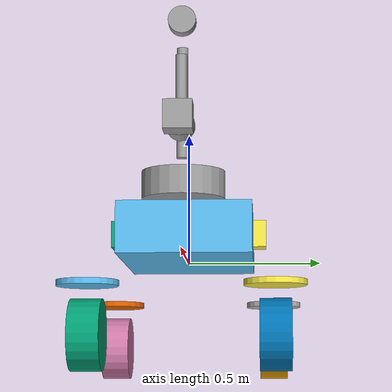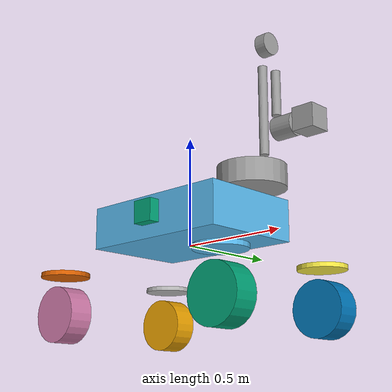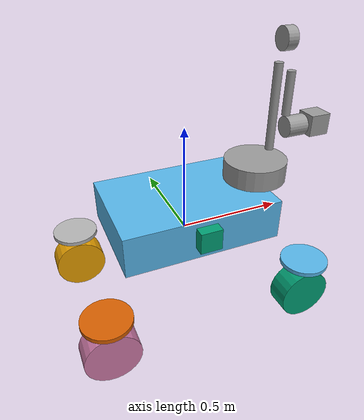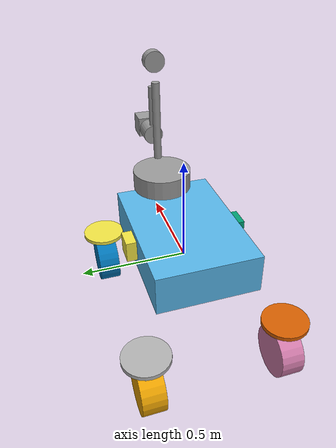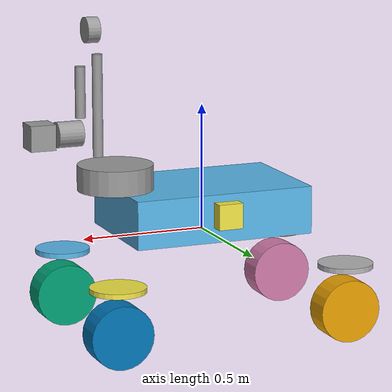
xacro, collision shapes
<?xml version="1.0"?>
<robot xmlns:xacro="http://www.ros.org/wiki/xacro" name="rover">
  <xacro:arg name="can_iface" default="can0"/>
  <xacro:arg name="ros2_control_mode" default="gazebo"/>
  <xacro:arg name="ros2_control_config" default="$(find mr2_rover_description)/config/controllers/rover_controllers.yaml"/>
  <xacro:property name="ros2_control_mode_value" value="$(arg ros2_control_mode)"/>
  <xacro:property name="ros2_control_config_value" value="$(arg ros2_control_config)"/>
  <xacro:property name="can_iface_value" value="$(arg can_iface)"/>
  <xacro:property name="rover_mesh_prefix" value="file://$(find mr2_rover_description)/meshes/rover"/>
  <xacro:property name="rover_mesh_scale" value="0.01"/>
  <material name="Rubber">
    <color rgba="0.05 0.05 0.05 1.0"/>
  </material>

  <!-- Include component macros -->
  <xacro:include filename="$(find mr2_rover_description)/urdf/rover_base.xacro"/>
  <xacro:include filename="$(find mr2_rover_description)/urdf/swerve_module.xacro"/>
  <xacro:include filename="$(find mr2_rover_description)/urdf/manipulator.xacro"/>
  <xacro:include filename="$(find mr2_rover_description)/ros2_control/rover_can.ros2_control.xacro"/>
  <xacro:include filename="$(find mr2_rover_description)/ros2_control/rover_gazebo.ros2_control.xacro"/>
  <xacro:include filename="$(find mr2_rover_description)/urdf/rover_gazebo_sensors.xacro"/>
  <!-- Chassis -->
  <xacro:rover_base/>
  <!-- Four modules -->
  <xacro:swerve_module prefix="fr" parent="right_rocker" xyz=" 0.476931 -0.0797 -0.18" direction="1"/>
  <xacro:swerve_module prefix="fl" parent="left_rocker" xyz=" 0.476931 0.0797 -0.18" direction="-1"/>
  <xacro:swerve_module prefix="rr" parent="right_rocker" xyz="-0.476931 -0.0797 -0.18" direction="1"/>
  <xacro:swerve_module prefix="rl" parent="left_rocker" xyz="-0.476931 0.0797 -0.18" direction="-1"/>
  <!-- Manipulator -->
  <xacro:manipulator/>

  <xacro:if value="${ros2_control_mode_value == 'gazebo'}">
    <xacro:rover_gazebo_sensors ros2_control_config="${ros2_control_config_value}"/>
    <xacro:rover_gazebo_ros2_control name="GazeboSimSystem" ros2_control_config="${ros2_control_config_value}"/>
  </xacro:if>
  <xacro:if value="${ros2_control_mode_value == 'real_hardware'}">
    <xacro:rover_can_ros2_control name="RoverCanSystem" can_iface="${can_iface_value}"/>
  </xacro:if>
</robot>

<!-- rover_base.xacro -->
<robot xmlns:xacro="http://www.ros.org/wiki/xacro">
  <xacro:macro name="rover_base" params="length:=0.73 width:=0.491 height:=0.19 mass:=10 rocker_size:=0.1 rocker_mass:=0.5 joint_effort:=50 joint_vel:=2.0 joint_lim:=1.57 front_camera_pitch:=0.3491">

    <link name="base_link"/>

    <link name="base_chassis">
      <inertial>
        <mass value="${mass}"/>
        <inertia ixx="${mass*(width*width + height*height)/12.0}" iyy="${mass*(length*length + height*height)/12.0}" izz="${mass*(length*length + width*width)/12.0}" ixy="0" ixz="0" iyz="0"/>
      </inertial>
      <visual>
        <geometry>
          <box size="${length} ${width} ${height}"/>
        </geometry>
        <origin xyz="0 0 ${height/2.0}"/>
      </visual>
      <collision>
        <geometry>
          <box size="${length} ${width} ${height}"/>
        </geometry>
        <origin xyz="0 0 ${height/2.0}"/>
      </collision>
    </link>

    <joint name="base_link_to_chassis" type="fixed">
      <parent link="base_link"/>
      <child link="base_chassis"/>
      <origin xyz="0 0 0"/>
    </joint>

    <link name="right_rocker">
      <inertial>
        <origin xyz="0 -${width/2.0} 0"/>
        <mass value="${rocker_mass}"/>
        <inertia ixx="1e-3" ixy="0" ixz="0" iyy="1e-3" iyz="0" izz="1e-3"/>
      </inertial>
      <visual>
        <geometry>
          <mesh filename="${rover_mesh_prefix}/rocker.obj"
                scale="${rover_mesh_scale} ${rover_mesh_scale} ${rover_mesh_scale}"/>
        </geometry>
        <origin xyz="0 ${width/2.0} -0.01"/>
      </visual>
      <collision>
        <geometry>
          <box size="${rocker_size} ${rocker_size} ${rocker_size}"/>
        </geometry>
        <origin xyz="0 0 ${rocker_size/2.0}"/>
      </collision>
    </link>

    <joint name="right_rocker_joint" type="revolute">
      <parent link="base_chassis"/>
      <child link="right_rocker"/>
      <origin xyz="0 -${width/2.0} 0.06" rpy="0 0 0"/>
      <axis xyz="0 1 0"/>
      <dynamics damping="0.1" friction="0.0"/>
      <limit lower="-${joint_lim}" upper="${joint_lim}" effort="${joint_effort}" velocity="${joint_vel}"/>
      <mimic joint="left_rocker_joint" multiplier="-1" offset="0"/>
    </joint>

    <link name="left_rocker">
      <inertial>
        <origin xyz="0 ${width/2.0} 0"/>
        <mass value="${rocker_mass}"/>
        <inertia ixx="1e-3" ixy="0" ixz="0" iyy="1e-3" iyz="0" izz="1e-3"/>
      </inertial>
      <visual>
        <geometry>
          <mesh filename="${rover_mesh_prefix}/rocker.obj"
                scale="${rover_mesh_scale} ${rover_mesh_scale} ${rover_mesh_scale}"/>
        </geometry>
	<origin xyz="0 ${-width/2.0} -0.01" rpy="0 0 3.141592"/>
      </visual>
      <collision>
        <geometry>
          <box size="${rocker_size} ${rocker_size} ${rocker_size}"/>
        </geometry>
        <origin xyz="0 0 ${rocker_size/2.0}"/>
      </collision>
    </link>

    <joint name="left_rocker_joint" type="revolute">
      <parent link="base_chassis"/>
      <child link="left_rocker"/>
      <origin xyz="0 ${width/2.0} 0.06" rpy="0 0 0"/>
      <axis xyz="0 1 0"/>
      <dynamics damping="0.1" friction="0.0"/>
      <limit lower="-${joint_lim}" upper="${joint_lim}" effort="${joint_effort}" velocity="${joint_vel}"/>
    </joint>

    <joint name="right_rocker_joint_mimic" type="fixed">
      <parent link="base_chassis" />
      <child link="dummy_link" />
    </joint>

    <link name="dummy_link"/>

    <link name="right_gnss"/>
    <joint name="base_to_right_gnss" type="fixed">
      <origin xyz="0 ${-width/2.0} 0" rpy="0 0 0"/>
      <parent link="base_chassis"/>
      <child link="right_gnss"/>
    </joint>

    <link name="left_gnss"/>
    <joint name="base_to_left_gnss" type="fixed">
      <origin xyz="0 ${width/2.0} 0" rpy="0 0 0"/>
      <parent link="base_chassis"/>
      <child link="left_gnss"/>
    </joint>

    <link name="front_camera"/>
    <joint name="base_to_front_camera" type="fixed">
      <origin xyz="${length/2.0} 0 ${height}" rpy="0 ${front_camera_pitch} 0"/>
      <parent link="base_chassis"/>
      <child link="front_camera"/>
    </joint>

    <!-- IMU mounted at the top of the base box -->
    <link name="imu_link"/>
    <joint name="base_to_imu" type="fixed">
      <origin xyz="0 0 0" rpy="0 0 0"/>
      <parent link="base_chassis"/>
      <child link="imu_link"/>
    </joint>

  </xacro:macro>
</robot>

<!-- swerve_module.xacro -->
<robot xmlns:xacro="http://www.ros.org/wiki/xacro">
  <xacro:macro name="swerve_module" params="prefix parent xyz direction">

    <!-- local constants -->
    <xacro:property name="steer_limit" value="3.14"/>
    <xacro:property name="wheel_limit" value="20.0"/>
    <xacro:property name="wheel_radius" value="0.125"/>
    <xacro:property name="wheel_width" value="0.11"/>

    <!-- Steering link -->
    <link name="${prefix}_mount">
      <inertial>
        <mass value="0.5"/>
        <inertia ixx="1e-3" ixy="0" ixz="0" iyy="1e-3" iyz="0" izz="1e-3"/>
      </inertial>
      <visual>
        <geometry>
          <mesh filename="${rover_mesh_prefix}/giuk.obj"
                scale="${rover_mesh_scale} ${-rover_mesh_scale * direction} ${rover_mesh_scale}"/>
        </geometry>
	<origin xyz="-0.47931 ${0.3252*direction} 0.17" rpy="0 0 0"/>
      </visual>
      <collision>
        <geometry>
          <cylinder radius="0.11" length="0.02"/>
        </geometry>
      </collision>
    </link>

    <!-- Wheel link -->
    <link name="${prefix}_wheel">
      <inertial>
        <mass value="0.2"/>
        <inertia ixx="1e-3" ixy="0" ixz="0" iyy="1e-3" iyz="0" izz="1e-3"/>
      </inertial>
      <visual>
        <geometry>
          <mesh filename="${rover_mesh_prefix}/wheel.obj"
                scale="${rover_mesh_scale} ${-rover_mesh_scale * direction} ${rover_mesh_scale}"/>
        </geometry>
	<origin xyz="-0.47931 ${0.3252*direction} 0.348457" rpy="0 0 0"/>
      </visual>
      <collision>
        <origin xyz="0 0 0" rpy="1.5708 0 0"/>
        <geometry>
          <cylinder radius="${wheel_radius}" length="${wheel_width}"/>
        </geometry>
      </collision>
    </link>

    <!-- Steering joint -->
    <joint name="${prefix}_steering_joint" type="continuous">
      <parent link="${parent}"/>
      <child link="${prefix}_mount"/>
      <origin xyz="${xyz}" rpy="0 0 0"/>
      <axis xyz="0 0 1"/>
      <limit effort="5" velocity="${steer_limit}"/>
    </joint>

    <!-- Wheel-spin joint -->
    <joint name="${prefix}_wheel_joint" type="continuous">
      <parent link="${prefix}_mount"/>
      <child link="${prefix}_wheel"/>
      <origin xyz="0 0 -0.178457" rpy="0 0 0"/>
      <axis xyz="0 1 0"/>
      <limit effort="5" velocity="${wheel_limit}"/>
    </joint>
  </xacro:macro>
</robot>

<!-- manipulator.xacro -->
<robot xmlns:xacro="http://www.ros.org/wiki/xacro">
  <!-- Joint limits (shared with ros2_control config) -->
  <xacro:property name="arm_j1_lower_limit" value="-100"/>
  <xacro:property name="arm_j1_upper_limit" value="100"/>
  <xacro:property name="arm_j2_lower_limit" value="-0.645"/>
  <xacro:property name="arm_j2_upper_limit" value="1.57"/>
  <xacro:property name="arm_j3_lower_limit" value="-100"/>
  <xacro:property name="arm_j3_upper_limit" value="100"/>
  <xacro:property name="arm_j4_lower_limit" value="-3.5"/>
  <xacro:property name="arm_j4_upper_limit" value="3.5"/>
  <xacro:property name="arm_j5_lower_limit" value="-0.12"/>
  <xacro:property name="arm_j5_upper_limit" value="3.65"/>
  <xacro:property name="arm_j6_lower_limit" value="-4"/>
  <xacro:property name="arm_j6_upper_limit" value="4"/>
  <!-- Shared shaded material for STL visuals (prevents unlit white appearance) -->
  <material name="ArmGrey">
    <color rgba="0.6 0.6 0.6 1.0"/>
  </material>
  <!-- Use file:// URI for meshes so both RViz (resource_retriever) and Gazebo resolve correctly -->
  <xacro:property name="manipulator_mesh_prefix" value="file://$(find mr2_rover_description)/meshes/manipulator"/>
  <xacro:property name="manipulator_mesh_scale" value="0.001"/>

  <xacro:macro name="manipulator" params="length:=0.73 width:=0.49 height:=0.19">
    <link name="arm_l1">
      <inertial>
        <mass value="0.1"/>
        <inertia ixx="0.1" iyy="0.1" izz="0.1" ixy="0" ixz="0" iyz="0"/>
      </inertial>
      <visual>
        <geometry>
          <mesh filename="${manipulator_mesh_prefix}/rover_manipulator_link1.stl"
                scale="${manipulator_mesh_scale} ${manipulator_mesh_scale} ${manipulator_mesh_scale}"/>
        </geometry>
        <origin xyz="0 0 0.032" rpy="0 0 3.1415926536"/>
        <material name="ArmGrey"/>
      </visual>
      <collision>
        <geometry>
          <cylinder radius="0.15" length="0.1"/>
        </geometry>
        <origin xyz="0 0 0.05"/>
      </collision>
    </link>
    <link name="arm_l2">
      <inertial>
        <mass value="0.1"/>
        <inertia ixx="0.1" iyy="0.1" izz="0.1" ixy="0" ixz="0" iyz="0"/>
      </inertial>
      <visual>
        <geometry>
          <mesh filename="${manipulator_mesh_prefix}/rover_manipulator_link2.stl"
                scale="${manipulator_mesh_scale} ${manipulator_mesh_scale} ${manipulator_mesh_scale}"/>
        </geometry>
        <origin xyz="-0.070 0 -0.104" rpy="0 0 3.1415926536"/>
        <material name="ArmGrey"/>
      </visual>
      <collision>
        <geometry>
          <cylinder radius="0.02" length="0.4"/>
        </geometry>
        <origin xyz="0 0 0.2"/>
      </collision>
    </link>
    <link name="arm_l3">
      <inertial>
        <mass value="0.1"/>
        <inertia ixx="0.1" iyy="0.1" izz="0.1" ixy="0" ixz="0" iyz="0"/>
      </inertial>
      <visual>
        <geometry>
          <mesh filename="${manipulator_mesh_prefix}/rover_manipulator_link3.stl"
                scale="${manipulator_mesh_scale} ${manipulator_mesh_scale} ${manipulator_mesh_scale}"/>
        </geometry>
        <origin xyz="-0.070 0.0001 -0.599" rpy="0 0 3.1415926536"/>
        <material name="ArmGrey"/>
      </visual>
      <collision>
        <geometry>
          <cylinder radius="0.05" length="0.05"/>
        </geometry>
        <origin xyz="0.025 0 0" rpy="0 -1.571 0"/>
      </collision>
    </link>
    <link name="arm_l4">
      <inertial>
        <mass value="0.1"/>
        <inertia ixx="0.1" iyy="0.1" izz="0.1" ixy="0" ixz="0" iyz="0"/>
      </inertial>
      <visual>
        <geometry>
          <mesh filename="${manipulator_mesh_prefix}/rover_manipulator_link4.stl"
                scale="${manipulator_mesh_scale} ${manipulator_mesh_scale} ${manipulator_mesh_scale}"/>
        </geometry>
        <origin xyz="-0.140 0.000 -0.461" rpy="0 0 3.1415926536"/>
        <material name="ArmGrey"/>
      </visual>
      <collision>
        <geometry>
          <cylinder radius="0.02" length="0.2"/>
        </geometry>
        <origin xyz="0 0 -0.1"/>
      </collision>
    </link>
    <link name="arm_l5">
      <inertial>
        <mass value="0.1"/>
        <inertia ixx="0.1" iyy="0.1" izz="0.1" ixy="0" ixz="0" iyz="0"/>
      </inertial>
      <visual>
        <geometry>
          <mesh filename="${manipulator_mesh_prefix}/rover_manipulator_link5.stl"
                scale="${manipulator_mesh_scale} ${manipulator_mesh_scale} ${manipulator_mesh_scale}"/>
        </geometry>
        <origin xyz="-0.140 0.000 -0.201" rpy="0 0 3.1415926536"/>
        <material name="ArmGrey"/>
      </visual>
      <collision>
        <geometry>
          <cylinder radius="0.05" length="0.1"/>
        </geometry>
        <origin xyz="0.05 0 0" rpy="0 -1.571 0"/>
      </collision>
    </link>
    <link name="arm_l6">
      <inertial>
        <mass value="0.1"/>
        <inertia ixx="0.1" iyy="0.1" izz="0.1" ixy="0" ixz="0" iyz="0"/>
      </inertial>
      <visual>
        <geometry>
          <box size="0.1 0.1 0.1"/>
        </geometry>
        <origin xyz="0.05 0 0" rpy="0 0 0"/>
        <material name="ArmGrey"/>
      </visual>
      <collision>
        <geometry>
          <box size="0.1 0.1 0.1"/>
        </geometry>
        <origin xyz="0.05 0 0" rpy="0 0 0"/>
      </collision>
    </link>
    <joint name="arm_j1" type="revolute">
      <parent link="base_link"/>
      <child link="arm_l1"/>
      <origin xyz="${length/2.0} 0 ${height}" rpy="0 0 0"/>
      <axis xyz="0 0 1"/>
      <limit lower="${arm_j1_lower_limit}" upper="${arm_j1_upper_limit}" effort="50" velocity="1.0"/>
    </joint>
    <joint name="arm_j2" type="revolute">
      <parent link="arm_l1"/>
      <child link="arm_l2"/>
      <origin xyz="0.070 0 0.136" rpy="0 0 0"/>
      <axis xyz="0 1 0"/>
      <limit lower="${arm_j2_lower_limit}" upper="${arm_j2_upper_limit}" effort="50" velocity="1.0"/>
    </joint>
    <joint name="arm_j3" type="revolute">
      <parent link="arm_l2"/>
      <child link="arm_l3"/>
      <origin xyz="0 0 0.495" rpy="0 0 0"/>
      <axis xyz="0 1 0"/>
      <limit lower="${arm_j3_lower_limit}" upper="${arm_j3_upper_limit}" effort="50" velocity="1.0"/>
    </joint>
    <joint name="arm_j4" type="revolute">
      <parent link="arm_l3"/>
      <child link="arm_l4"/>
      <origin xyz="0.070 0 -0.138" rpy="0 0 0"/>
      <axis xyz="0 0 1"/>
      <limit lower="${arm_j4_lower_limit}" upper="${arm_j4_upper_limit}" effort="50" velocity="1.0"/>
    </joint>
    <joint name="arm_j5" type="revolute">
      <parent link="arm_l4"/>
      <child link="arm_l5"/>
      <origin xyz="0 0 -0.260" rpy="0 0 0"/>
      <axis xyz="0 1 0"/>
      <limit lower="${arm_j5_lower_limit}" upper="${arm_j5_upper_limit}" effort="50" velocity="1.0"/>
    </joint>
    <joint name="arm_j6" type="revolute">
      <parent link="arm_l5"/>
      <child link="arm_l6"/>
      <origin xyz="0.116 0 0" rpy="0 0 0"/>
      <axis xyz="1 0 0"/>
      <limit lower="${arm_j6_lower_limit}" upper="${arm_j6_upper_limit}" effort="50" velocity="1.0"/>
    </joint>
  </xacro:macro>
</robot>
